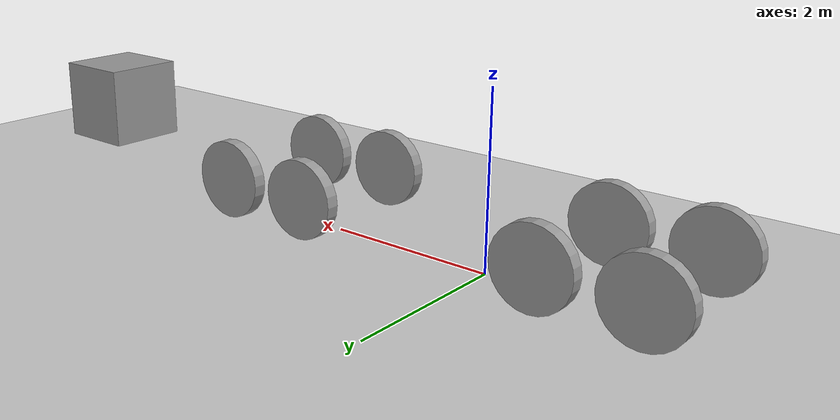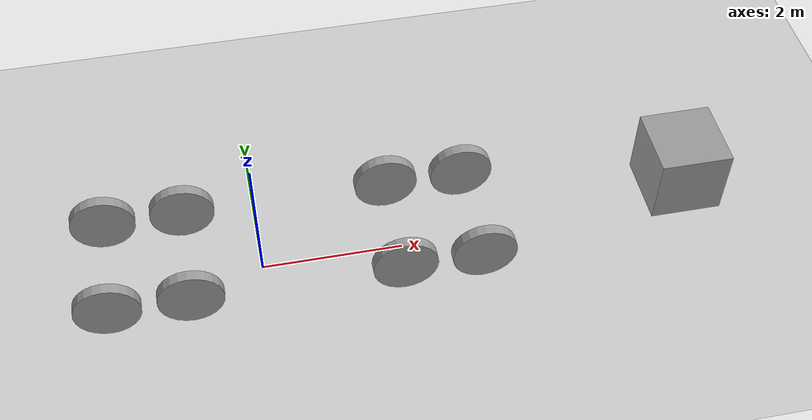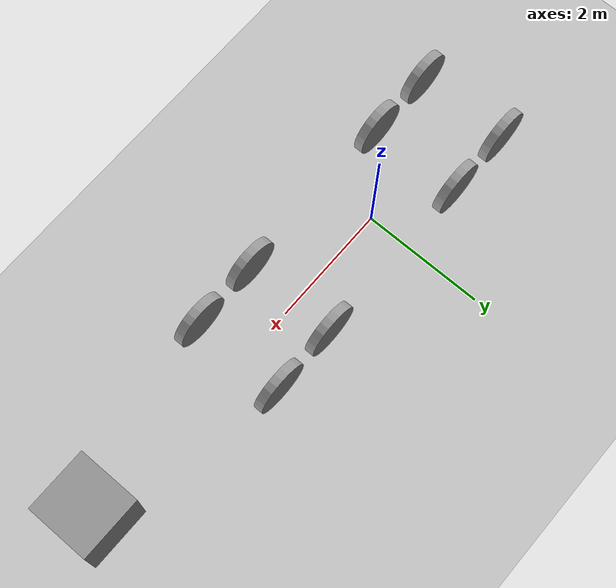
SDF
<sdf version="1.7">
 <world name="default">
  <model name="ground_plane">
   <static>1</static>
   <link name="link">
    <collision name="collision">
     <geometry><plane><normal>0 0 1</normal><size>100 100</size></plane></geometry>
     <surface>
      <contact><collide_bitmask>65535</collide_bitmask></contact>
      <friction><ode><mu>100</mu><mu2>50</mu2></ode></friction>
     </surface>
    </collision>
    <visual name="visual">
     <cast_shadows>0</cast_shadows>
     <geometry><plane><normal>0 0 1</normal><size>100 100</size></plane></geometry>
     <material>
      <script><uri>file://media/materials/scripts/gazebo.material</uri><name>Gazebo/Grey</name></script>
     </material>
    </visual>
   </link>
  </model>
  <model name="train_wheels">
   <link name="link">
    <inertial>
     <mass>1</mass>
     <inertia><ixx>0.145833</ixx><ixy>0</ixy><ixz>0</ixz><iyy>0.145833</iyy><iyz>0</iyz><izz>0.125</izz></inertia>
    </inertial>
    <pose>3 0.75 0.6 0 -0 0</pose>
    <visual name="visual">
     <geometry><cylinder><radius>0.45</radius><length>0.15</length></cylinder></geometry>
     <material>
      <script><name>Gazebo/Grey</name><uri>file://media/materials/scripts/gazebo.material</uri></script>
      <shader type="pixel"><normal_map>__default__</normal_map></shader>
      <ambient>0.3 0.3 0.3 1</ambient>
      <diffuse>0.7 0.7 0.7 1</diffuse>
      <specular>0.01 0.01 0.01 1</specular>
      <emissive>0 0 0 1</emissive>
     </material>
     <pose>0 0 0 1.5708 -0 0</pose>
    </visual>
    <collision name="collision">
     <geometry><cylinder><radius>0.45</radius><length>0.15</length></cylinder></geometry>
     <pose>0 0 0 1.5708 -0 0</pose>
    </collision>
   </link>
   <link name="link_clone">
    <inertial>
     <mass>1</mass>
     <inertia><ixx>0.145833</ixx><ixy>0</ixy><ixz>0</ixz><iyy>0.145833</iyy><iyz>0</iyz><izz>0.125</izz></inertia>
    </inertial>
    <pose>1.9 0.75 0.6 0 -0 0</pose>
    <visual name="visual">
     <geometry><cylinder><radius>0.45</radius><length>0.15</length></cylinder></geometry>
     <material>
      <script><name>Gazebo/Grey</name><uri>file://media/materials/scripts/gazebo.material</uri></script>
      <shader type="pixel"><normal_map>__default__</normal_map></shader>
      <ambient>0.3 0.3 0.3 1</ambient>
      <diffuse>0.7 0.7 0.7 1</diffuse>
      <specular>0.01 0.01 0.01 1</specular>
      <emissive>0 0 0 1</emissive>
     </material>
     <pose>0 0 0 1.5708 -0 0</pose>
    </visual>
    <collision name="collision">
     <geometry><cylinder><radius>0.45</radius><length>0.15</length></cylinder></geometry>
     <pose>0 0 0 1.5708 -0 0</pose>
    </collision>
   </link>
   <link name="link_clone_0">
    <inertial>
     <mass>1</mass>
     <inertia><ixx>0.145833</ixx><ixy>0</ixy><ixz>0</ixz><iyy>0.145833</iyy><iyz>0</iyz><izz>0.125</izz></inertia>
    </inertial>
    <pose>3 -0.75 0.6 0 -0 0</pose>
    <collision name="collision">
     <geometry><cylinder><radius>0.45</radius><length>0.15</length></cylinder></geometry>
     <pose>0 0 0 1.5708 -0 0</pose>
    </collision>
    <visual name="visual">
     <geometry><cylinder><radius>0.45</radius><length>0.15</length></cylinder></geometry>
     <material>
      <script><name>Gazebo/Grey</name><uri>file://media/materials/scripts/gazebo.material</uri></script>
      <shader type="pixel"><normal_map>__default__</normal_map></shader>
      <ambient>0.3 0.3 0.3 1</ambient>
      <diffuse>0.7 0.7 0.7 1</diffuse>
      <specular>0.01 0.01 0.01 1</specular>
      <emissive>0 0 0 1</emissive>
     </material>
     <pose>0 0 0 1.5708 -0 0</pose>
    </visual>
   </link>
   <link name="link_clone_0_clone">
    <inertial>
     <mass>1</mass>
     <inertia><ixx>0.145833</ixx><ixy>0</ixy><ixz>0</ixz><iyy>0.145833</iyy><iyz>0</iyz><izz>0.125</izz></inertia>
    </inertial>
    <pose>1.9 -0.75 0.6 0 -0 0</pose>
    <collision name="collision">
     <geometry><cylinder><radius>0.45</radius><length>0.15</length></cylinder></geometry>
     <pose>0 0 0 1.5708 -0 0</pose>
    </collision>
    <visual name="visual">
     <geometry><cylinder><radius>0.45</radius><length>0.15</length></cylinder></geometry>
     <material>
      <script><name>Gazebo/Grey</name><uri>file://media/materials/scripts/gazebo.material</uri></script>
      <shader type="pixel"><normal_map>__default__</normal_map></shader>
      <ambient>0.3 0.3 0.3 1</ambient>
      <diffuse>0.7 0.7 0.7 1</diffuse>
      <specular>0.01 0.01 0.01 1</specular>
      <emissive>0 0 0 1</emissive>
     </material>
     <pose>0 0 0 1.5708 -0 0</pose>
    </visual>
   </link>
   <link name="link_clone_0_clone_clone">
    <inertial>
     <mass>1</mass>
     <inertia><ixx>0.145833</ixx><ixy>0</ixy><ixz>0</ixz><iyy>0.145833</iyy><iyz>0</iyz><izz>0.125</izz></inertia>
    </inertial>
    <pose>-1 -0.75 0.6 0 -0 0</pose>
    <collision name="collision">
     <geometry><cylinder><radius>0.45</radius><length>0.15</length></cylinder></geometry>
     <pose>0 0 0 1.5708 -0 0</pose>
    </collision>
    <visual name="visual">
     <geometry><cylinder><radius>0.45</radius><length>0.15</length></cylinder></geometry>
     <material>
      <script><name>Gazebo/Grey</name><uri>file://media/materials/scripts/gazebo.material</uri></script>
      <shader type="pixel"><normal_map>__default__</normal_map></shader>
      <ambient>0.3 0.3 0.3 1</ambient>
      <diffuse>0.7 0.7 0.7 1</diffuse>
      <specular>0.01 0.01 0.01 1</specular>
      <emissive>0 0 0 1</emissive>
     </material>
     <pose>0 0 0 1.5708 -0 0</pose>
    </visual>
   </link>
   <link name="link_clone_0_clone_clone_clone">
    <inertial>
     <mass>1</mass>
     <inertia><ixx>0.145833</ixx><ixy>0</ixy><ixz>0</ixz><iyy>0.145833</iyy><iyz>0</iyz><izz>0.125</izz></inertia>
    </inertial>
    <pose>-2.1 -0.75 0.6 0 -0 0</pose>
    <collision name="collision">
     <geometry><cylinder><radius>0.45</radius><length>0.15</length></cylinder></geometry>
     <pose>0 0 0 1.5708 -0 0</pose>
    </collision>
    <visual name="visual">
     <geometry><cylinder><radius>0.45</radius><length>0.15</length></cylinder></geometry>
     <material>
      <script><name>Gazebo/Grey</name><uri>file://media/materials/scripts/gazebo.material</uri></script>
      <shader type="pixel"><normal_map>__default__</normal_map></shader>
      <ambient>0.3 0.3 0.3 1</ambient>
      <diffuse>0.7 0.7 0.7 1</diffuse>
      <specular>0.01 0.01 0.01 1</specular>
      <emissive>0 0 0 1</emissive>
     </material>
     <pose>0 0 0 1.5708 -0 0</pose>
    </visual>
   </link>
   <link name="link_clone_clone">
    <inertial>
     <mass>1</mass>
     <inertia><ixx>0.145833</ixx><ixy>0</ixy><ixz>0</ixz><iyy>0.145833</iyy><iyz>0</iyz><izz>0.125</izz></inertia>
    </inertial>
    <pose>-1 0.75 0.6 0 -0 0</pose>
    <collision name="collision">
     <geometry><cylinder><radius>0.45</radius><length>0.15</length></cylinder></geometry>
     <pose>0 0 0 1.5708 -0 0</pose>
    </collision>
    <visual name="visual">
     <geometry><cylinder><radius>0.45</radius><length>0.15</length></cylinder></geometry>
     <material>
      <script><name>Gazebo/Grey</name><uri>file://media/materials/scripts/gazebo.material</uri></script>
      <shader type="pixel"><normal_map>__default__</normal_map></shader>
      <ambient>0.3 0.3 0.3 1</ambient>
      <diffuse>0.7 0.7 0.7 1</diffuse>
      <specular>0.01 0.01 0.01 1</specular>
      <emissive>0 0 0 1</emissive>
     </material>
     <pose>0 0 0 1.5708 -0 0</pose>
    </visual>
   </link>
   <link name="link_clone_clone_clone">
    <inertial>
     <mass>1</mass>
     <inertia><ixx>0.145833</ixx><ixy>0</ixy><ixz>0</ixz><iyy>0.145833</iyy><iyz>0</iyz><izz>0.125</izz></inertia>
    </inertial>
    <pose>-2.1 0.75 0.6 0 -0 0</pose>
    <collision name="collision">
     <geometry><cylinder><radius>0.45</radius><length>0.15</length></cylinder></geometry>
     <pose>0 0 0 1.5708 -0 0</pose>
    </collision>
    <visual name="visual">
     <geometry><cylinder><radius>0.45</radius><length>0.15</length></cylinder></geometry>
     <material>
      <script><name>Gazebo/Grey</name><uri>file://media/materials/scripts/gazebo.material</uri></script>
      <shader type="pixel"><normal_map>__default__</normal_map></shader>
      <ambient>0.3 0.3 0.3 1</ambient>
      <diffuse>0.7 0.7 0.7 1</diffuse>
      <specular>0.01 0.01 0.01 1</specular>
      <emissive>0 0 0 1</emissive>
     </material>
     <pose>0 0 0 1.5708 -0 0</pose>
    </visual>
   </link>
   <static>1</static>
  </model>
  <model name="target_box">
   <link name="link">
    <inertial>
     <mass>1</mass>
     <inertia>
      <ixx>0.166667</ixx>
      <ixy>0</ixy>
      <ixz>0</ixz>
      <iyy>0.166667</iyy>
      <iyz>0</iyz>
      <izz>0.166667</izz>
     </inertia>
    </inertial>
    <visual name="visual">
     <geometry><box><size>1 1 1</size></box></geometry>
     <material>
      <script><name>Gazebo/Grey</name><uri>file://media/materials/scripts/gazebo.material</uri></script>
      <shader type="pixel"/>
     </material>
    </visual>
    <collision name="collision">
     <geometry><box><size>1 1 1</size></box></geometry>
     <surface>
      <friction>
       <ode><mu>1</mu><mu2>1</mu2><fdir1>0 0 0</fdir1><slip1>0</slip1><slip2>0</slip2></ode>
       <torsional>
        <coefficient>1</coefficient>
        <patch_radius>0</patch_radius>
        <surface_radius>0</surface_radius>
        <use_patch_radius>1</use_patch_radius>
        <ode><slip>0</slip></ode>
       </torsional>
      </friction>
      <bounce><restitution_coefficient>0</restitution_coefficient><threshold>1e+06</threshold></bounce>
      <contact>
       <collide_without_contact>0</collide_without_contact>
       <collide_without_contact_bitmask>1</collide_without_contact_bitmask>
       <collide_bitmask>1</collide_bitmask>
       <ode>
        <soft_cfm>0</soft_cfm>
        <soft_erp>0.2</soft_erp>
        <kp>1e+13</kp>
        <kd>1</kd>
        <max_vel>0.01</max_vel>
        <min_depth>0</min_depth>
       </ode>
       <bullet>
        <split_impulse>1</split_impulse>
        <split_impulse_penetration_threshold>-0.01</split_impulse_penetration_threshold>
        <soft_cfm>0</soft_cfm>
        <soft_erp>0.2</soft_erp>
        <kp>1e+13</kp>
        <kd>1</kd>
       </bullet>
      </contact>
     </surface>
    </collision>
   </link>
   <static>1</static>
   <pose>6 0 0.95 0 -0 0</pose>
  </model>
 </world>
</sdf>
